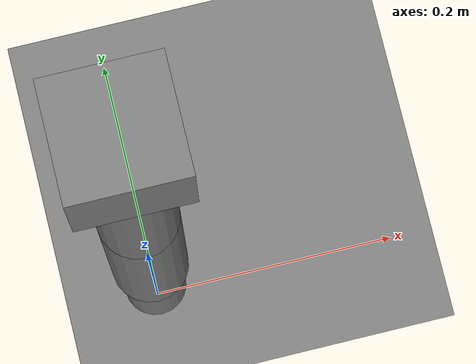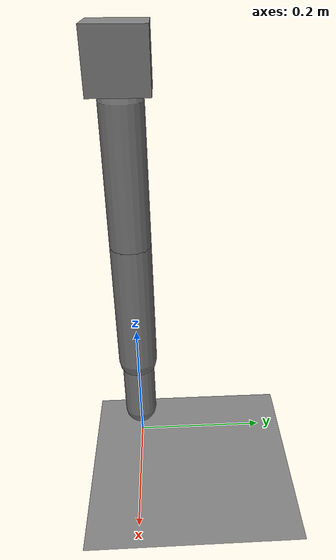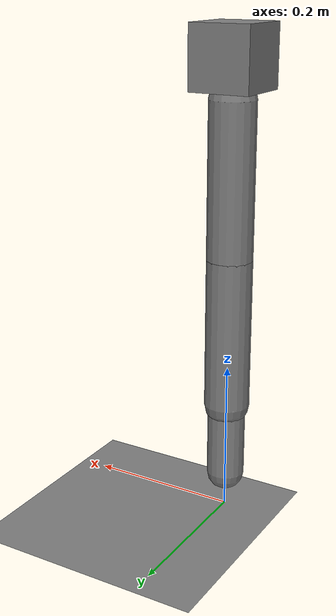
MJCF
<mujoco model="torque-arm">
  <compiler angle="radian" autolimits="true"/>
  <option timestep="0.002"/>
  <default><geom friction="1 .005 .0001"/></default>
  <worldbody>
    <geom name="floor" type="plane" size="3 3 0.05"/>
    <body name="base" pos="0 0 0.6">
      <geom name="base_box" type="box" size="0.04 0.04 0.04"/>
      <body name="upper" pos="0 0 -0.05">
        <joint name="shoulder" type="hinge" axis="0 1 0" damping="0" range="-1.5 1.5"/>
        <geom name="upper_link" type="capsule" fromto="0 0 0 0 0 -0.2" size="0.03" density="600"/>
        <body name="lower" pos="0 0 -0.2">
          <joint name="elbow" type="hinge" axis="0 1 0" damping="0" range="-1.5 1.5"/>
          <geom name="lower_link" type="capsule" fromto="0 0 0 0 0 -0.2" size="0.03" density="600"/>
          <body name="wrist" pos="0 0 -0.2">
            <joint name="wrist_joint" type="hinge" axis="0 1 0" damping="0.1"/>
            <geom name="wrist_link" type="capsule" fromto="0 0 0 0 0 -0.1" size="0.025" density="600"/>
          </body>
        </body>
      </body>
    </body>
  </worldbody>
  <actuator>
    <motor name="shoulder_motor" joint="shoulder" forcerange="-30 30"/>
    <motor name="elbow_motor" joint="elbow" forcerange="-30 30"/>
    <velocity name="wrist_velocity" joint="wrist_joint" kv="5"/>
  </actuator>
</mujoco>
